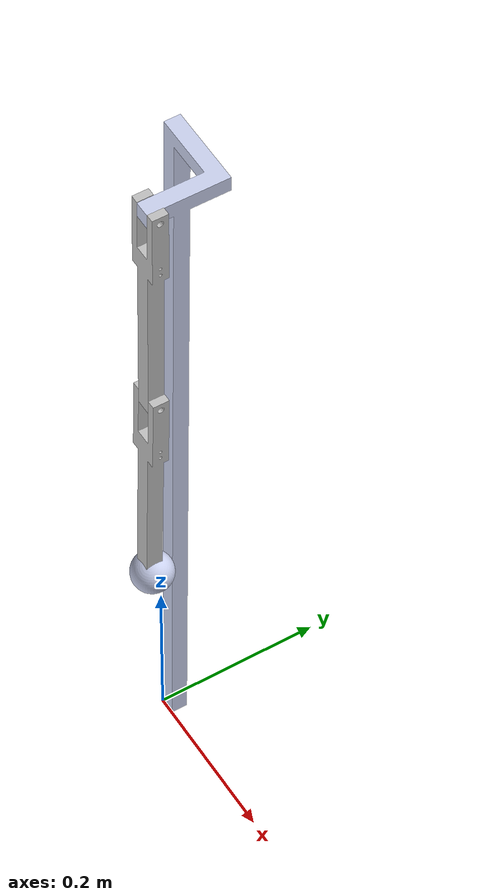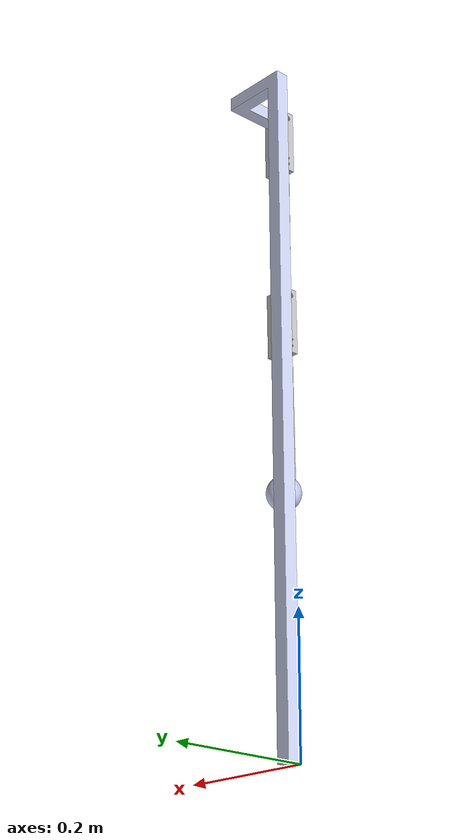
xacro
<?xml version="1.0"?>
<robot name="twolinkman" xmlns:xacro="http://www.ros.org/wiki/xacro">
	<xacro:include filename="$(find twolinkman)/urdf/twolinkman.gazebo"/>
  <link name="world"/>
	<joint name="fixed" type="fixed">
	  <parent link="world"/>
	  <child link="base_link"/>
	</joint>
	<link
    name="base_link">
    <inertial>
      <origin
        xyz="0.019321 0.56657 -0.012593"
        rpy="0 0 0" />
      <mass
        value="0.46299" />
      <inertia
        ixx="0.046499"
        ixy="-0.0017672"
        ixz="-9.1379E-05"
        iyy="0.00036871"
        iyz="-0.00018866"
        izz="0.046684" />
    </inertial>
    <visual>
      <origin
        xyz="0 0 0"
        rpy="0 0 0" />
      <geometry>
        <mesh
          filename="package://twolinkman/meshes/base_link.STL" />
      </geometry>
      <material
        name="">
        <color
          rgba="0.79216 0.81961 0.93333 1" />
      </material>
    </visual>
    <collision>
      <origin
        xyz="0 0 0"
        rpy="0 0 0" />
      <geometry>
        <mesh
          filename="package://twolinkman/meshes/base_link.STL" />
      </geometry>
    </collision>
  </link>
  <link
    name="rear_link">
    <inertial>
      <origin
        xyz="0.02 -0.14397 -1.2421E-14"
        rpy="0 0 0" />
      <mass
        value="0.3699" />
      <inertia
        ixx="0.0029957"
        ixy="1.4341E-18"
        ixz="5.0293E-21"
        iyy="4.5696E-05"
        iyz="-1.561E-16"
        izz="0.0030162" />
    </inertial>
    <visual>
      <origin
        xyz="0 0 0"
        rpy="0 0 0" />
      <geometry>
        <mesh
          filename="package://twolinkman/meshes/rear_link.STL" />
      </geometry>
      <material
        name="">
        <color
          rgba="0.75294 0.75294 0.75294 1" />
      </material>
    </visual>
    <collision>
      <origin
        xyz="0 0 0"
        rpy="0 0 0" />
      <geometry>
        <mesh
          filename="package://twolinkman/meshes/rear_link.STL" />
      </geometry>
    </collision>
  </link>
  <joint
    name="rear_joint"
    type="revolute">
    <origin
      xyz="0.070875 -0.059956 0.99148"
      rpy="1.5648 0.00085216 4.9911E-05" />
    <parent
      link="base_link" />
    <child
      link="rear_link" />
    <axis
      xyz="1 0 0" />
				<limit
		  effort="500"
		  velocity="0.5"
			lower="-1.78"
      upper="1.78" />
		<dynamics
		  damping="0.1"
		  friction="0.1" />
  </joint>
  <link
    name="front_link">
    <inertial>
      <origin
        xyz="0.02 -0.14397 -1.2143E-14"
        rpy="0 0 0" />
      <mass
        value="0.3699" />
      <inertia
        ixx="0.0029957"
        ixy="5.8392E-19"
        ixz="-1.3711E-20"
        iyy="4.5696E-05"
        iyz="-1.5635E-16"
        izz="0.0030162" />
    </inertial>
    <visual>
      <origin
        xyz="0 0 0"
        rpy="0 0 0" />
      <geometry>
        <mesh
          filename="package://twolinkman/meshes/front_link.STL" />
      </geometry>
      <material
        name="">
        <color
          rgba="0.75294 0.75294 0.75294 1" />
      </material>
    </visual>
    <collision>
      <origin
        xyz="0 0 0"
        rpy="0 0 0" />
      <geometry>
        <mesh
          filename="package://twolinkman/meshes/front_link.STL" />
      </geometry>
    </collision>
  </link>
  <joint
    name="front_joint"
    type="revolute">
    <origin
      xyz="0 -0.3 0"
      rpy="-0.011862 1.7957E-17 3.889E-16" />
    <parent
      link="rear_link" />
    <child
      link="front_link" />
    <axis
      xyz="1 0 0" />
    <limit
		  effort="500"
		  velocity="0.5"
			lower="-1.78"
      upper="1.78"/>
		<dynamics
		  damping="0.1"
		  friction="0.1" />
  </joint>
  <link
    name="load_link">
    <inertial>
      <origin
        xyz="-1.3878E-17 -2.7756E-17 -5.5511E-17"
        rpy="0 0 0" />
      <mass
        value="5" />
      <inertia
        ixx="1.6362E-05"
        ixy="-4.2352E-22"
        ixz="0"
        iyy="1.6362E-05"
        iyz="-1.0588E-22"
        izz="1.6362E-05" />
    </inertial>
    <visual>
      <origin
        xyz="0 0 0"
        rpy="0 0 0" />
      <geometry>
        <mesh
          filename="package://twolinkman/meshes/load_link.STL" />
      </geometry>
      <material
        name="">
        <color
          rgba="0.79216 0.81961 0.93333 1" />
      </material>
    </visual>
    <collision>
      <origin
        xyz="0 0 0"
        rpy="0 0 0" />
      <geometry>
        <mesh
          filename="package://twolinkman/meshes/load_link.STL" />
      </geometry>
    </collision>
  </link>
  <joint
    name="load_joint"
    type="revolute">
    <origin
      xyz="0.02145 -0.29824 -0.0025016"
      rpy="-0.86981 1.1271 0.31167" />
    <parent
      link="front_link" />
    <child
      link="load_link" />
    <axis
      xyz="0 0 1" />
		<limit
		  effort="0"
		  velocity="0"
			lower="0"
      upper="0"/>
  </joint>
	<transmission name="rear_tran">
    <type>transmission_interface/SimpleTransmission</type>
    <joint name="rear_joint">
      <hardwareInterface>hardware_interface/EffortJointInterface</hardwareInterface>
    </joint>
    <actuator name="rear_motor">
      <hardwareInterface>hardware_interface/EffortJointInterface</hardwareInterface>
      <mechanicalReduction>1</mechanicalReduction>
    </actuator>
  </transmission>

  <transmission name="front_tran">
    <type>transmission_interface/SimpleTransmission</type>
    <joint name="front_joint">
      <hardwareInterface>hardware_interface/EffortJointInterface</hardwareInterface>
    </joint>
    <actuator name="front_motor">
      <hardwareInterface>hardware_interface/EffortJointInterface</hardwareInterface>
      <mechanicalReduction>1</mechanicalReduction>
    </actuator>
  </transmission>
</robot>
